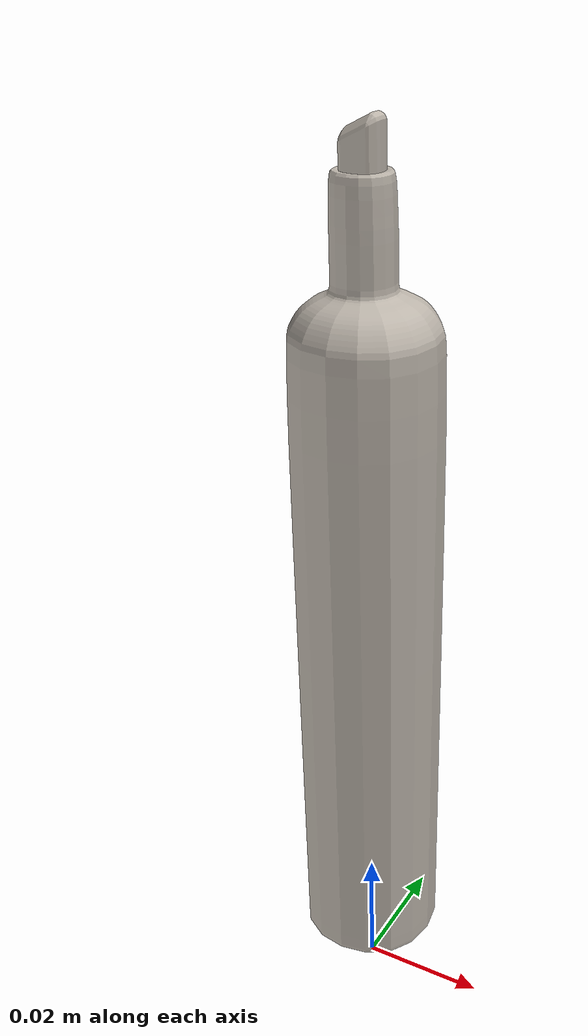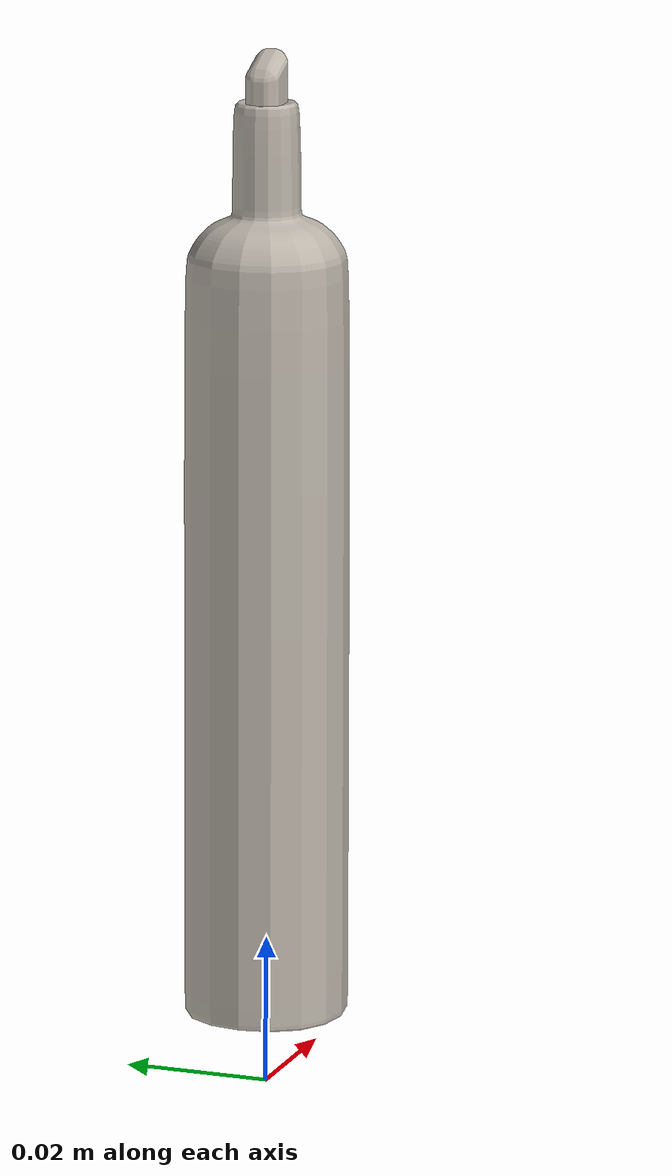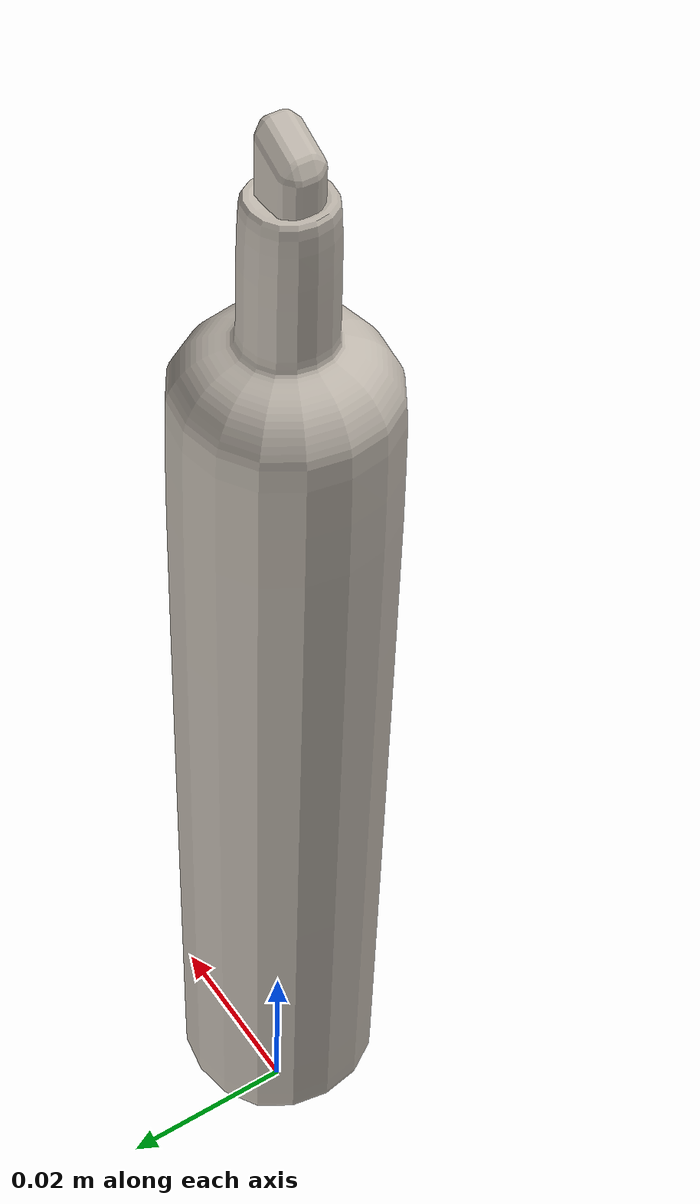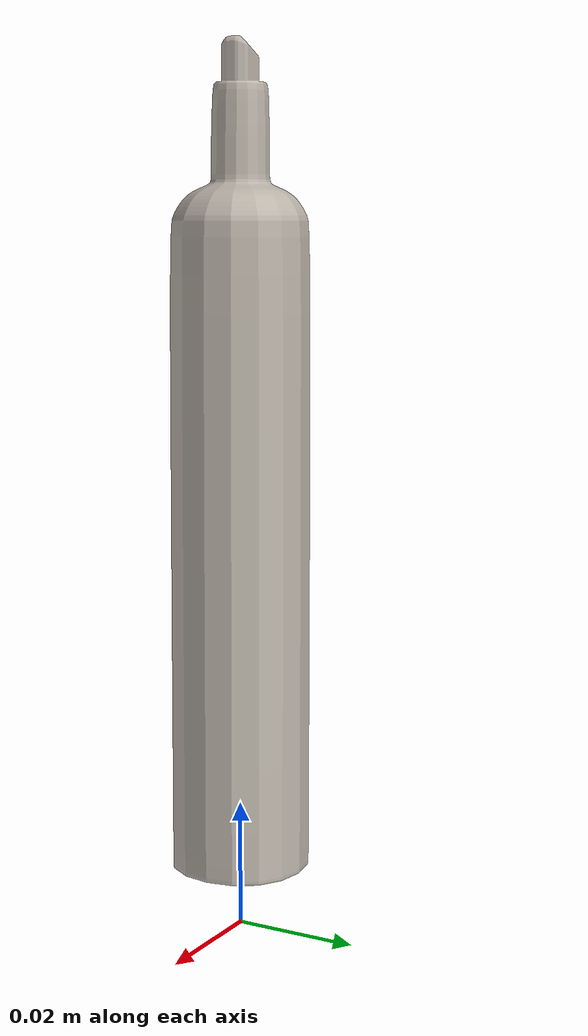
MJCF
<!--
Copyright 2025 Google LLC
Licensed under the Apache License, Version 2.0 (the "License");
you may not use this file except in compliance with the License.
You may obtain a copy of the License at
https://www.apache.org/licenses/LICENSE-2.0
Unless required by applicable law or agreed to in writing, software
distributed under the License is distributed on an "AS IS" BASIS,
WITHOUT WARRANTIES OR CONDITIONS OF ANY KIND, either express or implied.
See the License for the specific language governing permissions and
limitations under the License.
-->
<mujoco model="marker">
  <compiler assetdir="meshes" texturedir="materials"/>

  <asset>
    <texture type="2d" name="marker_texture" file="4k_textures/marker_4k_BaseColor.png"/>
    <material name="marker_texture" texture="marker_texture"/>

    <mesh file="marker.obj" scale = "1 1 1"/>
    <mesh file="marker_collision_001.obj" scale = "1 1 1"/>
    <mesh file="marker_collision_002.obj" scale = "1 1 1"/>
    <mesh file="marker_collision_003.obj" scale = "1 1 1"/>
    <mesh file="marker_collision_004.obj" scale = "1 1 1"/>
    <mesh file="marker_collision_005.obj" scale = "1 1 1"/>
    <mesh file="marker_collision_006.obj" scale = "1 1 1"/>
    <mesh file="marker_collision_007.obj" scale = "1 1 1"/>
    <mesh file="marker_collision_008.obj" scale = "1 1 1"/>
    <mesh file="marker_collision_009.obj" scale = "1 1 1"/>
    <mesh file="marker_collision_010.obj" scale = "1 1 1"/>
    <mesh file="marker_collision_011.obj" scale = "1 1 1"/>
    <mesh file="marker_collision_012.obj" scale = "1 1 1"/>
    <mesh file="marker_collision_013.obj" scale = "1 1 1"/>
    <mesh file="marker_collision_014.obj" scale = "1 1 1"/>
    <mesh file="marker_collision_015.obj" scale = "1 1 1"/>
    <mesh file="marker_collision_016.obj" scale = "1 1 1"/>
    <mesh file="marker_collision_high_friction_001.obj" scale = "1 1 1"/>
    <mesh file="marker_collision_high_friction_002.obj" scale = "1 1 1"/>
    <mesh file="marker_collision_high_friction_003.obj" scale = "1 1 1"/>
    <mesh file="marker_collision_high_friction_004.obj" scale = "1 1 1"/>
    <mesh file="marker_collision_high_friction_005.obj" scale = "1 1 1"/>
    <mesh file="marker_collision_high_friction_006.obj" scale = "1 1 1"/>
    <mesh file="marker_collision_high_friction_007.obj" scale = "1 1 1"/>
    <mesh file="marker_collision_high_friction_008.obj" scale = "1 1 1"/>
  </asset>

  <default>
    <default class="marker">
      <default class="visual_marker">
        <geom type="mesh" group="2" density="200" contype="0" conaffinity="0" material="marker_texture"/>
      </default>
      <default class="collision_marker">
        <geom type="mesh" group="3" density="0" solref=".004 1" friction="1.0 0.01 0.01" condim="6"/>
      </default>
      <default class="collision_marker_high_friction">
        <geom type="mesh" group="4" density="0" solref=".004 1" friction="0.5 0.01 0.01" solimp="0.99 0.99 0.01" condim="6"/>
      </default>
    </default>
  </default>

  <worldbody>
    <body childclass="marker" pos="0 0 0.01">
      <freejoint/>
      <geom class="visual_marker" mesh="marker" euler="0 90 90"/>
      <geom class="collision_marker" mesh="marker_collision_001" euler="0 90 90"/>
      <geom class="collision_marker" mesh="marker_collision_002" euler="0 90 90"/>
      <geom class="collision_marker" mesh="marker_collision_003" euler="0 90 90"/>
      <geom class="collision_marker" mesh="marker_collision_004" euler="0 90 90"/>
      <geom class="collision_marker" mesh="marker_collision_005" euler="0 90 90"/>
      <geom class="collision_marker" mesh="marker_collision_006" euler="0 90 90"/>
      <geom class="collision_marker" mesh="marker_collision_007" euler="0 90 90"/>
      <geom class="collision_marker" mesh="marker_collision_008" euler="0 90 90"/>
      <geom class="collision_marker" mesh="marker_collision_009" euler="0 90 90"/>
      <geom class="collision_marker" mesh="marker_collision_010" euler="0 90 90"/>
      <geom class="collision_marker" mesh="marker_collision_011" euler="0 90 90"/>
      <geom class="collision_marker" mesh="marker_collision_012" euler="0 90 90"/>
      <geom class="collision_marker" mesh="marker_collision_013" euler="0 90 90"/>
      <geom class="collision_marker" mesh="marker_collision_014" euler="0 90 90"/>
      <geom class="collision_marker" mesh="marker_collision_015" euler="0 90 90"/>
      <geom class="collision_marker" mesh="marker_collision_016" euler="0 90 90"/>
      <geom class="collision_marker_high_friction" mesh="marker_collision_high_friction_001" euler="0 90 90"/>
      <geom class="collision_marker_high_friction" mesh="marker_collision_high_friction_002" euler="0 90 90"/>
      <geom class="collision_marker_high_friction" mesh="marker_collision_high_friction_003" euler="0 90 90"/>
      <geom class="collision_marker_high_friction" mesh="marker_collision_high_friction_004" euler="0 90 90"/>
      <geom class="collision_marker_high_friction" mesh="marker_collision_high_friction_005" euler="0 90 90"/>
      <geom class="collision_marker_high_friction" mesh="marker_collision_high_friction_006" euler="0 90 90"/>
      <geom class="collision_marker_high_friction" mesh="marker_collision_high_friction_007" euler="0 90 90"/>
      <geom class="collision_marker_high_friction" mesh="marker_collision_high_friction_008" euler="0 90 90"/>
    </body>
  </worldbody>
</mujoco>
